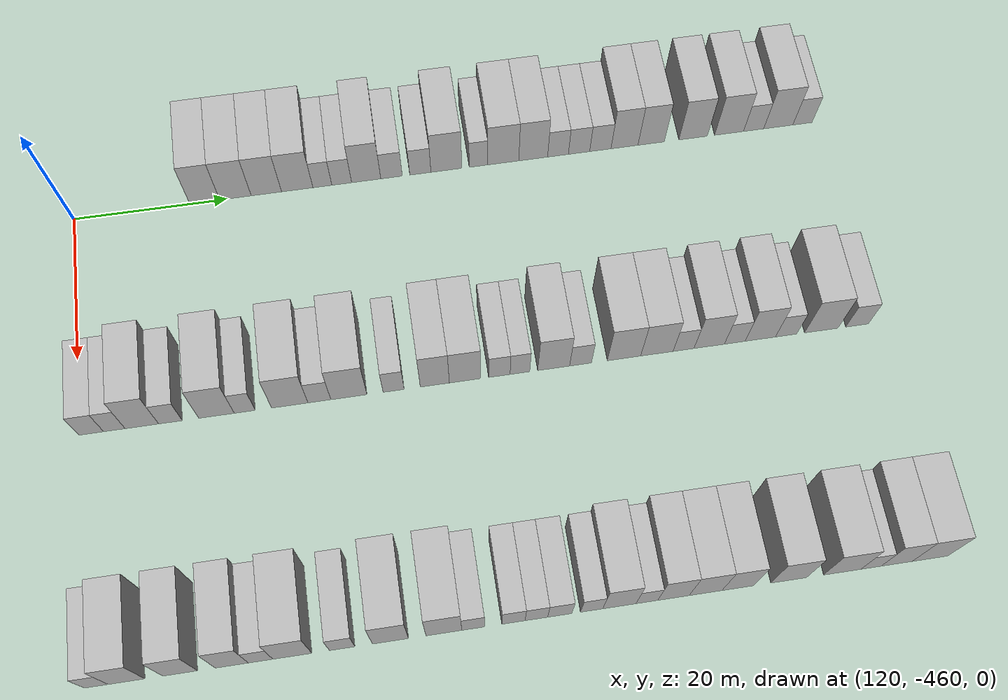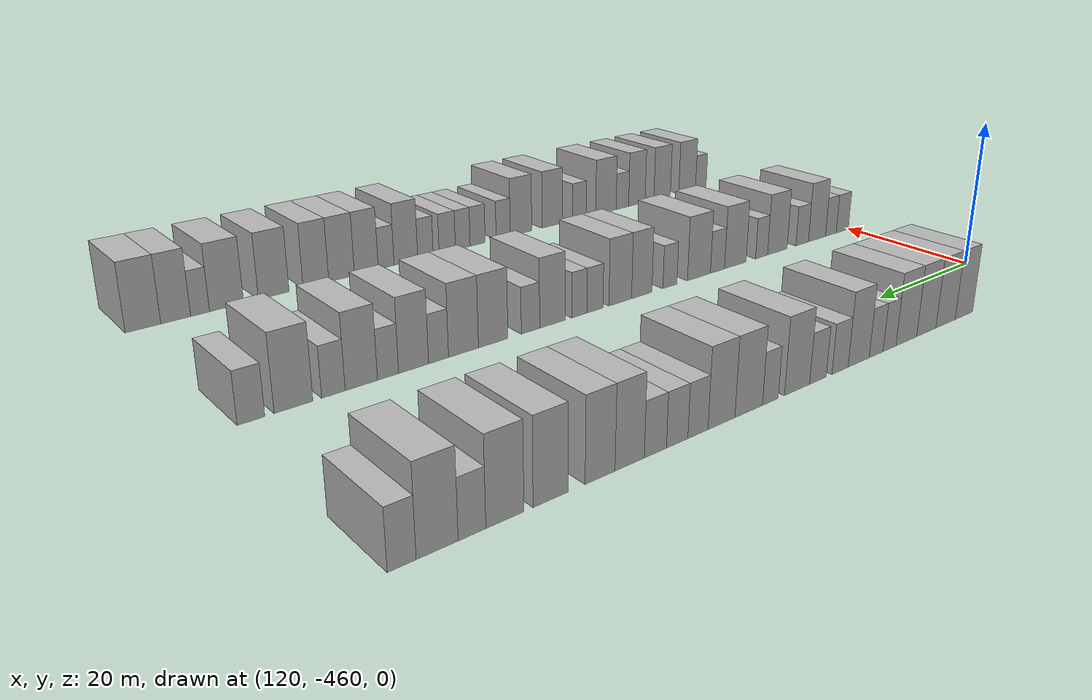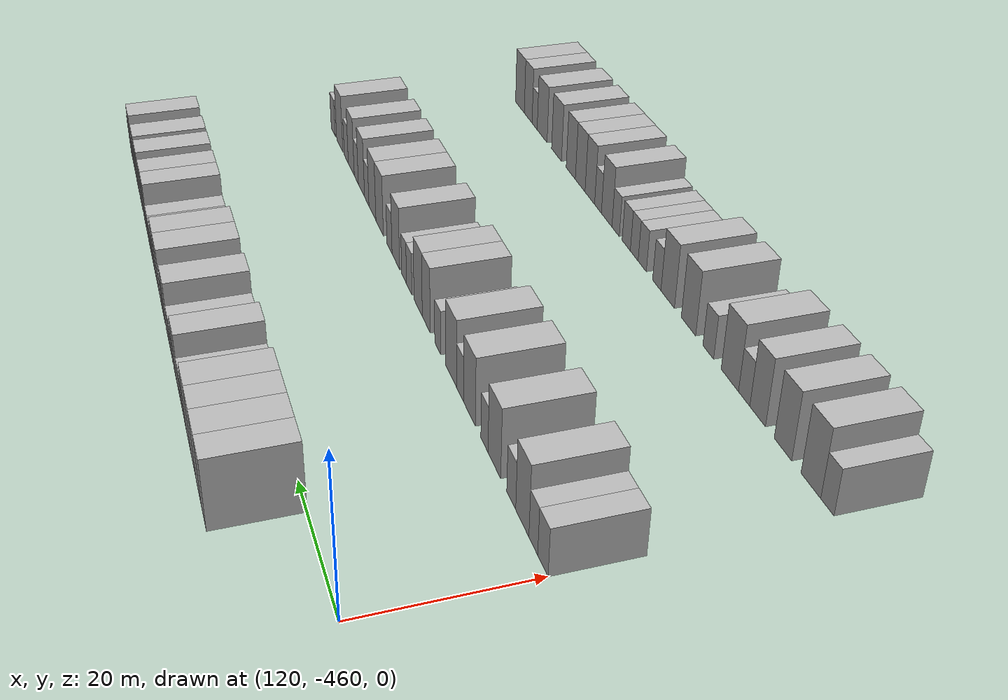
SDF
<sdf version="1.6">
 <world name="default">
  <model name="building_679">
   <static>1</static>
   <pose>115.0000 -442.9684 0 0.000000 0.000000 0.000000</pose>
   <link name="link">
    <pose>0 0 4.50 0 0 0</pose>
    <collision name="collision"><geometry><box><size>10.0000 3.9283 9.0000</size></box></geometry></collision>
    <visual name="visual">
     <cast_shadows>0</cast_shadows>
     <geometry><box><size>10.0000 3.9283 9.0000</size></box></geometry>
     <material>
      <script>
       <uri>model://HANNAS_wall/materials/scripts</uri>
       <uri>model://HANNAS_wall/materials/textures</uri>
       <name>vrc/HANNAS_wall</name>
      </script>
     </material>
    </visual>
   </link>
  </model>
  <model name="building_680">
   <static>1</static>
   <pose>115.0000 -438.9249 0 0.000000 0.000000 0.000000</pose>
   <link name="link">
    <pose>0 0 4.50 0 0 0</pose>
    <collision name="collision"><geometry><box><size>10.0000 4.1587 9.0000</size></box></geometry></collision>
    <visual name="visual">
     <cast_shadows>0</cast_shadows>
     <geometry><box><size>10.0000 4.1587 9.0000</size></box></geometry>
     <material>
      <script>
       <uri>model://HANNAS_wall/materials/scripts</uri>
       <uri>model://HANNAS_wall/materials/textures</uri>
       <name>vrc/HANNAS_wall</name>
      </script>
     </material>
    </visual>
   </link>
  </model>
  <model name="building_681">
   <static>1</static>
   <pose>115.0000 -434.8409 0 0.000000 0.000000 0.000000</pose>
   <link name="link">
    <pose>0 0 4.50 0 0 0</pose>
    <collision name="collision"><geometry><box><size>10.0000 4.0093 9.0000</size></box></geometry></collision>
    <visual name="visual">
     <cast_shadows>0</cast_shadows>
     <geometry><box><size>10.0000 4.0093 9.0000</size></box></geometry>
     <material>
      <script>
       <uri>model://HANNAS_wall/materials/scripts</uri>
       <uri>model://HANNAS_wall/materials/textures</uri>
       <name>vrc/HANNAS_wall</name>
      </script>
     </material>
    </visual>
   </link>
  </model>
  <model name="building_682">
   <static>1</static>
   <pose>115.0000 -430.7626 0 0.000000 0.000000 0.000000</pose>
   <link name="link">
    <pose>0 0 4.50 0 0 0</pose>
    <collision name="collision"><geometry><box><size>10.0000 4.1472 9.0000</size></box></geometry></collision>
    <visual name="visual">
     <cast_shadows>0</cast_shadows>
     <geometry><box><size>10.0000 4.1472 9.0000</size></box></geometry>
     <material>
      <script>
       <uri>model://HANNAS_wall/materials/scripts</uri>
       <uri>model://HANNAS_wall/materials/textures</uri>
       <name>vrc/HANNAS_wall</name>
      </script>
     </material>
    </visual>
   </link>
  </model>
  <model name="building_683">
   <static>1</static>
   <pose>115.0000 -427.4301 0 0.000000 0.000000 0.000000</pose>
   <link name="link">
    <pose>0 0 3.00 0 0 0</pose>
    <collision name="collision"><geometry><box><size>10.0000 2.5177 6.0000</size></box></geometry></collision>
    <visual name="visual">
     <cast_shadows>0</cast_shadows>
     <geometry><box><size>10.0000 2.5177 6.0000</size></box></geometry>
     <material>
      <script>
       <uri>model://HANNAS_wall/materials/scripts</uri>
       <uri>model://HANNAS_wall/materials/textures</uri>
       <name>vrc/HANNAS_wall</name>
      </script>
     </material>
    </visual>
   </link>
  </model>
  <model name="building_684">
   <static>1</static>
   <pose>115.0000 -424.8525 0 0.000000 0.000000 0.000000</pose>
   <link name="link">
    <pose>0 0 3.00 0 0 0</pose>
    <collision name="collision"><geometry><box><size>10.0000 2.6376 6.0000</size></box></geometry></collision>
    <visual name="visual">
     <cast_shadows>0</cast_shadows>
     <geometry><box><size>10.0000 2.6376 6.0000</size></box></geometry>
     <material>
      <script>
       <uri>model://HANNAS_wall/materials/scripts</uri>
       <uri>model://HANNAS_wall/materials/textures</uri>
       <name>vrc/HANNAS_wall</name>
      </script>
     </material>
    </visual>
   </link>
  </model>
  <model name="building_685">
   <static>1</static>
   <pose>115.0000 -421.5930 0 0.000000 0.000000 0.000000</pose>
   <link name="link">
    <pose>0 0 4.50 0 0 0</pose>
    <collision name="collision"><geometry><box><size>10.0000 3.8812 9.0000</size></box></geometry></collision>
    <visual name="visual">
     <cast_shadows>0</cast_shadows>
     <geometry><box><size>10.0000 3.8812 9.0000</size></box></geometry>
     <material>
      <script>
       <uri>model://HANNAS_wall/materials/scripts</uri>
       <uri>model://HANNAS_wall/materials/textures</uri>
       <name>vrc/HANNAS_wall</name>
      </script>
     </material>
    </visual>
   </link>
  </model>
  <model name="building_686">
   <static>1</static>
   <pose>115.0000 -418.2173 0 0.000000 0.000000 0.000000</pose>
   <link name="link">
    <pose>0 0 3.00 0 0 0</pose>
    <collision name="collision"><geometry><box><size>10.0000 2.8702 6.0000</size></box></geometry></collision>
    <visual name="visual">
     <cast_shadows>0</cast_shadows>
     <geometry><box><size>10.0000 2.8702 6.0000</size></box></geometry>
     <material>
      <script>
       <uri>model://HANNAS_wall/materials/scripts</uri>
       <uri>model://HANNAS_wall/materials/textures</uri>
       <name>vrc/HANNAS_wall</name>
      </script>
     </material>
    </visual>
   </link>
  </model>
  <model name="building_687">
   <static>1</static>
   <pose>115.0000 -414.3641 0 0.000000 0.000000 0.000000</pose>
   <link name="link">
    <pose>0 0 3.00 0 0 0</pose>
    <collision name="collision"><geometry><box><size>10.0000 2.8363 6.0000</size></box></geometry></collision>
    <visual name="visual">
     <cast_shadows>0</cast_shadows>
     <geometry><box><size>10.0000 2.8363 6.0000</size></box></geometry>
     <material>
      <script>
       <uri>model://HANNAS_wall/materials/scripts</uri>
       <uri>model://HANNAS_wall/materials/textures</uri>
       <name>vrc/HANNAS_wall</name>
      </script>
     </material>
    </visual>
   </link>
  </model>
  <model name="building_688">
   <static>1</static>
   <pose>115.0000 -410.8692 0 0.000000 0.000000 0.000000</pose>
   <link name="link">
    <pose>0 0 4.50 0 0 0</pose>
    <collision name="collision"><geometry><box><size>10.0000 4.1534 9.0000</size></box></geometry></collision>
    <visual name="visual">
     <cast_shadows>0</cast_shadows>
     <geometry><box><size>10.0000 4.1534 9.0000</size></box></geometry>
     <material>
      <script>
       <uri>model://HANNAS_wall/materials/scripts</uri>
       <uri>model://HANNAS_wall/materials/textures</uri>
       <name>vrc/HANNAS_wall</name>
      </script>
     </material>
    </visual>
   </link>
  </model>
  <model name="building_689">
   <static>1</static>
   <pose>115.0000 -406.5505 0 0.000000 0.000000 0.000000</pose>
   <link name="link">
    <pose>0 0 3.00 0 0 0</pose>
    <collision name="collision"><geometry><box><size>10.0000 2.4841 6.0000</size></box></geometry></collision>
    <visual name="visual">
     <cast_shadows>0</cast_shadows>
     <geometry><box><size>10.0000 2.4841 6.0000</size></box></geometry>
     <material>
      <script>
       <uri>model://HANNAS_wall/materials/scripts</uri>
       <uri>model://HANNAS_wall/materials/textures</uri>
       <name>vrc/HANNAS_wall</name>
      </script>
     </material>
    </visual>
   </link>
  </model>
  <model name="building_690">
   <static>1</static>
   <pose>115.0000 -403.2127 0 0.000000 0.000000 0.000000</pose>
   <link name="link">
    <pose>0 0 4.50 0 0 0</pose>
    <collision name="collision"><geometry><box><size>10.0000 4.1914 9.0000</size></box></geometry></collision>
    <visual name="visual">
     <cast_shadows>0</cast_shadows>
     <geometry><box><size>10.0000 4.1914 9.0000</size></box></geometry>
     <material>
      <script>
       <uri>model://HANNAS_wall/materials/scripts</uri>
       <uri>model://HANNAS_wall/materials/textures</uri>
       <name>vrc/HANNAS_wall</name>
      </script>
     </material>
    </visual>
   </link>
  </model>
  <model name="building_691">
   <static>1</static>
   <pose>115.0000 -399.1612 0 0.000000 0.000000 0.000000</pose>
   <link name="link">
    <pose>0 0 4.50 0 0 0</pose>
    <collision name="collision"><geometry><box><size>10.0000 3.9117 9.0000</size></box></geometry></collision>
    <visual name="visual">
     <cast_shadows>0</cast_shadows>
     <geometry><box><size>10.0000 3.9117 9.0000</size></box></geometry>
     <material>
      <script>
       <uri>model://HANNAS_wall/materials/scripts</uri>
       <uri>model://HANNAS_wall/materials/textures</uri>
       <name>vrc/HANNAS_wall</name>
      </script>
     </material>
    </visual>
   </link>
  </model>
  <model name="building_692">
   <static>1</static>
   <pose>115.0000 -395.7961 0 0.000000 0.000000 0.000000</pose>
   <link name="link">
    <pose>0 0 3.00 0 0 0</pose>
    <collision name="collision"><geometry><box><size>10.0000 2.8184 6.0000</size></box></geometry></collision>
    <visual name="visual">
     <cast_shadows>0</cast_shadows>
     <geometry><box><size>10.0000 2.8184 6.0000</size></box></geometry>
     <material>
      <script>
       <uri>model://HANNAS_wall/materials/scripts</uri>
       <uri>model://HANNAS_wall/materials/textures</uri>
       <name>vrc/HANNAS_wall</name>
      </script>
     </material>
    </visual>
   </link>
  </model>
  <model name="building_693">
   <static>1</static>
   <pose>115.0000 -392.9397 0 0.000000 0.000000 0.000000</pose>
   <link name="link">
    <pose>0 0 3.00 0 0 0</pose>
    <collision name="collision"><geometry><box><size>10.0000 2.8944 6.0000</size></box></geometry></collision>
    <visual name="visual">
     <cast_shadows>0</cast_shadows>
     <geometry><box><size>10.0000 2.8944 6.0000</size></box></geometry>
     <material>
      <script>
       <uri>model://HANNAS_wall/materials/scripts</uri>
       <uri>model://HANNAS_wall/materials/textures</uri>
       <name>vrc/HANNAS_wall</name>
      </script>
     </material>
    </visual>
   </link>
  </model>
  <model name="building_694">
   <static>1</static>
   <pose>115.0000 -390.0396 0 0.000000 0.000000 0.000000</pose>
   <link name="link">
    <pose>0 0 3.00 0 0 0</pose>
    <collision name="collision"><geometry><box><size>10.0000 2.9059 6.0000</size></box></geometry></collision>
    <visual name="visual">
     <cast_shadows>0</cast_shadows>
     <geometry><box><size>10.0000 2.9059 6.0000</size></box></geometry>
     <material>
      <script>
       <uri>model://HANNAS_wall/materials/scripts</uri>
       <uri>model://HANNAS_wall/materials/textures</uri>
       <name>vrc/HANNAS_wall</name>
      </script>
     </material>
    </visual>
   </link>
  </model>
  <model name="building_695">
   <static>1</static>
   <pose>115.0000 -386.7426 0 0.000000 0.000000 0.000000</pose>
   <link name="link">
    <pose>0 0 4.50 0 0 0</pose>
    <collision name="collision"><geometry><box><size>10.0000 3.6881 9.0000</size></box></geometry></collision>
    <visual name="visual">
     <cast_shadows>0</cast_shadows>
     <geometry><box><size>10.0000 3.6881 9.0000</size></box></geometry>
     <material>
      <script>
       <uri>model://HANNAS_wall/materials/scripts</uri>
       <uri>model://HANNAS_wall/materials/textures</uri>
       <name>vrc/HANNAS_wall</name>
      </script>
     </material>
    </visual>
   </link>
  </model>
  <model name="building_696">
   <static>1</static>
   <pose>115.0000 -383.0917 0 0.000000 0.000000 0.000000</pose>
   <link name="link">
    <pose>0 0 4.50 0 0 0</pose>
    <collision name="collision"><geometry><box><size>10.0000 3.6136 9.0000</size></box></geometry></collision>
    <visual name="visual">
     <cast_shadows>0</cast_shadows>
     <geometry><box><size>10.0000 3.6136 9.0000</size></box></geometry>
     <material>
      <script>
       <uri>model://HANNAS_wall/materials/scripts</uri>
       <uri>model://HANNAS_wall/materials/textures</uri>
       <name>vrc/HANNAS_wall</name>
      </script>
     </material>
    </visual>
   </link>
  </model>
  <model name="building_697">
   <static>1</static>
   <pose>115.0000 -377.3254 0 0.000000 0.000000 0.000000</pose>
   <link name="link">
    <pose>0 0 4.50 0 0 0</pose>
    <collision name="collision"><geometry><box><size>10.0000 3.9190 9.0000</size></box></geometry></collision>
    <visual name="visual">
     <cast_shadows>0</cast_shadows>
     <geometry><box><size>10.0000 3.9190 9.0000</size></box></geometry>
     <material>
      <script>
       <uri>model://HANNAS_wall/materials/scripts</uri>
       <uri>model://HANNAS_wall/materials/textures</uri>
       <name>vrc/HANNAS_wall</name>
      </script>
     </material>
    </visual>
   </link>
  </model>
  <model name="building_698">
   <static>1</static>
   <pose>115.0000 -372.3649 0 0.000000 0.000000 0.000000</pose>
   <link name="link">
    <pose>0 0 4.50 0 0 0</pose>
    <collision name="collision"><geometry><box><size>10.0000 4.0021 9.0000</size></box></geometry></collision>
    <visual name="visual">
     <cast_shadows>0</cast_shadows>
     <geometry><box><size>10.0000 4.0021 9.0000</size></box></geometry>
     <material>
      <script>
       <uri>model://HANNAS_wall/materials/scripts</uri>
       <uri>model://HANNAS_wall/materials/textures</uri>
       <name>vrc/HANNAS_wall</name>
      </script>
     </material>
    </visual>
   </link>
  </model>
  <model name="building_699">
   <static>1</static>
   <pose>115.0000 -368.9711 0 0.000000 0.000000 0.000000</pose>
   <link name="link">
    <pose>0 0 3.00 0 0 0</pose>
    <collision name="collision"><geometry><box><size>10.0000 2.7854 6.0000</size></box></geometry></collision>
    <visual name="visual">
     <cast_shadows>0</cast_shadows>
     <geometry><box><size>10.0000 2.7854 6.0000</size></box></geometry>
     <material>
      <script>
       <uri>model://HANNAS_wall/materials/scripts</uri>
       <uri>model://HANNAS_wall/materials/textures</uri>
       <name>vrc/HANNAS_wall</name>
      </script>
     </material>
    </visual>
   </link>
  </model>
  <model name="building_700">
   <static>1</static>
   <pose>115.0000 -365.5543 0 0.000000 0.000000 0.000000</pose>
   <link name="link">
    <pose>0 0 4.50 0 0 0</pose>
    <collision name="collision"><geometry><box><size>10.0000 4.0482 9.0000</size></box></geometry></collision>
    <visual name="visual">
     <cast_shadows>0</cast_shadows>
     <geometry><box><size>10.0000 4.0482 9.0000</size></box></geometry>
     <material>
      <script>
       <uri>model://HANNAS_wall/materials/scripts</uri>
       <uri>model://HANNAS_wall/materials/textures</uri>
       <name>vrc/HANNAS_wall</name>
      </script>
     </material>
    </visual>
   </link>
  </model>
  <model name="building_701">
   <static>1</static>
   <pose>115.0000 -362.1959 0 0.000000 0.000000 0.000000</pose>
   <link name="link">
    <pose>0 0 3.00 0 0 0</pose>
    <collision name="collision"><geometry><box><size>10.0000 2.6687 6.0000</size></box></geometry></collision>
    <visual name="visual">
     <cast_shadows>0</cast_shadows>
     <geometry><box><size>10.0000 2.6687 6.0000</size></box></geometry>
     <material>
      <script>
       <uri>model://HANNAS_wall/materials/scripts</uri>
       <uri>model://HANNAS_wall/materials/textures</uri>
       <name>vrc/HANNAS_wall</name>
      </script>
     </material>
    </visual>
   </link>
  </model>
  <model name="building_907">
   <static>1</static>
   <pose>145.0000 -458.5121 0 0.000000 0.000000 0.000000</pose>
   <link name="link">
    <pose>0 0 3.00 0 0 0</pose>
    <collision name="collision"><geometry><box><size>10.0000 2.9758 6.0000</size></box></geometry></collision>
    <visual name="visual">
     <cast_shadows>0</cast_shadows>
     <geometry><box><size>10.0000 2.9758 6.0000</size></box></geometry>
     <material>
      <script>
       <uri>model://HANNAS_wall/materials/scripts</uri>
       <uri>model://HANNAS_wall/materials/textures</uri>
       <name>vrc/HANNAS_wall</name>
      </script>
     </material>
    </visual>
   </link>
  </model>
  <model name="building_908">
   <static>1</static>
   <pose>145.0000 -455.7255 0 0.000000 0.000000 0.000000</pose>
   <link name="link">
    <pose>0 0 3.00 0 0 0</pose>
    <collision name="collision"><geometry><box><size>10.0000 2.5973 6.0000</size></box></geometry></collision>
    <visual name="visual">
     <cast_shadows>0</cast_shadows>
     <geometry><box><size>10.0000 2.5973 6.0000</size></box></geometry>
     <material>
      <script>
       <uri>model://HANNAS_wall/materials/scripts</uri>
       <uri>model://HANNAS_wall/materials/textures</uri>
       <name>vrc/HANNAS_wall</name>
      </script>
     </material>
    </visual>
   </link>
  </model>
  <model name="building_909">
   <static>1</static>
   <pose>145.0000 -452.3979 0 0.000000 0.000000 0.000000</pose>
   <link name="link">
    <pose>0 0 4.50 0 0 0</pose>
    <collision name="collision"><geometry><box><size>10.0000 4.0579 9.0000</size></box></geometry></collision>
    <visual name="visual">
     <cast_shadows>0</cast_shadows>
     <geometry><box><size>10.0000 4.0579 9.0000</size></box></geometry>
     <material>
      <script>
       <uri>model://HANNAS_wall/materials/scripts</uri>
       <uri>model://HANNAS_wall/materials/textures</uri>
       <name>vrc/HANNAS_wall</name>
      </script>
     </material>
    </visual>
   </link>
  </model>
  <model name="building_910">
   <static>1</static>
   <pose>145.0000 -448.9315 0 0.000000 0.000000 0.000000</pose>
   <link name="link">
    <pose>0 0 3.00 0 0 0</pose>
    <collision name="collision"><geometry><box><size>10.0000 2.8750 6.0000</size></box></geometry></collision>
    <visual name="visual">
     <cast_shadows>0</cast_shadows>
     <geometry><box><size>10.0000 2.8750 6.0000</size></box></geometry>
     <material>
      <script>
       <uri>model://HANNAS_wall/materials/scripts</uri>
       <uri>model://HANNAS_wall/materials/textures</uri>
       <name>vrc/HANNAS_wall</name>
      </script>
     </material>
    </visual>
   </link>
  </model>
  <model name="building_911">
   <static>1</static>
   <pose>145.0000 -443.3315 0 0.000000 0.000000 0.000000</pose>
   <link name="link">
    <pose>0 0 4.50 0 0 0</pose>
    <collision name="collision"><geometry><box><size>10.0000 4.3251 9.0000</size></box></geometry></collision>
    <visual name="visual">
     <cast_shadows>0</cast_shadows>
     <geometry><box><size>10.0000 4.3251 9.0000</size></box></geometry>
     <material>
      <script>
       <uri>model://HANNAS_wall/materials/scripts</uri>
       <uri>model://HANNAS_wall/materials/textures</uri>
       <name>vrc/HANNAS_wall</name>
      </script>
     </material>
    </visual>
   </link>
  </model>
  <model name="building_912">
   <static>1</static>
   <pose>145.0000 -439.8831 0 0.000000 0.000000 0.000000</pose>
   <link name="link">
    <pose>0 0 3.00 0 0 0</pose>
    <collision name="collision"><geometry><box><size>10.0000 2.5716 6.0000</size></box></geometry></collision>
    <visual name="visual">
     <cast_shadows>0</cast_shadows>
     <geometry><box><size>10.0000 2.5716 6.0000</size></box></geometry>
     <material>
      <script>
       <uri>model://HANNAS_wall/materials/scripts</uri>
       <uri>model://HANNAS_wall/materials/textures</uri>
       <name>vrc/HANNAS_wall</name>
      </script>
     </material>
    </visual>
   </link>
  </model>
  <model name="building_913">
   <static>1</static>
   <pose>145.0000 -434.3703 0 0.000000 0.000000 0.000000</pose>
   <link name="link">
    <pose>0 0 4.50 0 0 0</pose>
    <collision name="collision"><geometry><box><size>10.0000 4.4540 9.0000</size></box></geometry></collision>
    <visual name="visual">
     <cast_shadows>0</cast_shadows>
     <geometry><box><size>10.0000 4.4540 9.0000</size></box></geometry>
     <material>
      <script>
       <uri>model://HANNAS_wall/materials/scripts</uri>
       <uri>model://HANNAS_wall/materials/textures</uri>
       <name>vrc/HANNAS_wall</name>
      </script>
     </material>
    </visual>
   </link>
  </model>
  <model name="building_914">
   <static>1</static>
   <pose>145.0000 -430.7350 0 0.000000 0.000000 0.000000</pose>
   <link name="link">
    <pose>0 0 3.00 0 0 0</pose>
    <collision name="collision"><geometry><box><size>10.0000 2.8167 6.0000</size></box></geometry></collision>
    <visual name="visual">
     <cast_shadows>0</cast_shadows>
     <geometry><box><size>10.0000 2.8167 6.0000</size></box></geometry>
     <material>
      <script>
       <uri>model://HANNAS_wall/materials/scripts</uri>
       <uri>model://HANNAS_wall/materials/textures</uri>
       <name>vrc/HANNAS_wall</name>
      </script>
     </material>
    </visual>
   </link>
  </model>
  <model name="building_915">
   <static>1</static>
   <pose>145.0000 -427.0944 0 0.000000 0.000000 0.000000</pose>
   <link name="link">
    <pose>0 0 4.50 0 0 0</pose>
    <collision name="collision"><geometry><box><size>10.0000 4.4644 9.0000</size></box></geometry></collision>
    <visual name="visual">
     <cast_shadows>0</cast_shadows>
     <geometry><box><size>10.0000 4.4644 9.0000</size></box></geometry>
     <material>
      <script>
       <uri>model://HANNAS_wall/materials/scripts</uri>
       <uri>model://HANNAS_wall/materials/textures</uri>
       <name>vrc/HANNAS_wall</name>
      </script>
     </material>
    </visual>
   </link>
  </model>
  <model name="building_916">
   <static>1</static>
   <pose>145.0000 -421.5565 0 0.000000 0.000000 0.000000</pose>
   <link name="link">
    <pose>0 0 3.00 0 0 0</pose>
    <collision name="collision"><geometry><box><size>10.0000 2.6115 6.0000</size></box></geometry></collision>
    <visual name="visual">
     <cast_shadows>0</cast_shadows>
     <geometry><box><size>10.0000 2.6115 6.0000</size></box></geometry>
     <material>
      <script>
       <uri>model://HANNAS_wall/materials/scripts</uri>
       <uri>model://HANNAS_wall/materials/textures</uri>
       <name>vrc/HANNAS_wall</name>
      </script>
     </material>
    </visual>
   </link>
  </model>
  <model name="building_917">
   <static>1</static>
   <pose>145.0000 -416.4414 0 0.000000 0.000000 0.000000</pose>
   <link name="link">
    <pose>0 0 4.50 0 0 0</pose>
    <collision name="collision"><geometry><box><size>10.0000 3.6188 9.0000</size></box></geometry></collision>
    <visual name="visual">
     <cast_shadows>0</cast_shadows>
     <geometry><box><size>10.0000 3.6188 9.0000</size></box></geometry>
     <material>
      <script>
       <uri>model://HANNAS_wall/materials/scripts</uri>
       <uri>model://HANNAS_wall/materials/textures</uri>
       <name>vrc/HANNAS_wall</name>
      </script>
     </material>
    </visual>
   </link>
  </model>
  <model name="building_918">
   <static>1</static>
   <pose>145.0000 -412.6809 0 0.000000 0.000000 0.000000</pose>
   <link name="link">
    <pose>0 0 4.50 0 0 0</pose>
    <collision name="collision"><geometry><box><size>10.0000 3.9022 9.0000</size></box></geometry></collision>
    <visual name="visual">
     <cast_shadows>0</cast_shadows>
     <geometry><box><size>10.0000 3.9022 9.0000</size></box></geometry>
     <material>
      <script>
       <uri>model://HANNAS_wall/materials/scripts</uri>
       <uri>model://HANNAS_wall/materials/textures</uri>
       <name>vrc/HANNAS_wall</name>
      </script>
     </material>
    </visual>
   </link>
  </model>
  <model name="building_919">
   <static>1</static>
   <pose>145.0000 -408.3902 0 0.000000 0.000000 0.000000</pose>
   <link name="link">
    <pose>0 0 3.00 0 0 0</pose>
    <collision name="collision"><geometry><box><size>10.0000 2.6793 6.0000</size></box></geometry></collision>
    <visual name="visual">
     <cast_shadows>0</cast_shadows>
     <geometry><box><size>10.0000 2.6793 6.0000</size></box></geometry>
     <material>
      <script>
       <uri>model://HANNAS_wall/materials/scripts</uri>
       <uri>model://HANNAS_wall/materials/textures</uri>
       <name>vrc/HANNAS_wall</name>
      </script>
     </material>
    </visual>
   </link>
  </model>
  <model name="building_920">
   <static>1</static>
   <pose>145.0000 -405.8153 0 0.000000 0.000000 0.000000</pose>
   <link name="link">
    <pose>0 0 3.00 0 0 0</pose>
    <collision name="collision"><geometry><box><size>10.0000 2.4705 6.0000</size></box></geometry></collision>
    <visual name="visual">
     <cast_shadows>0</cast_shadows>
     <geometry><box><size>10.0000 2.4705 6.0000</size></box></geometry>
     <material>
      <script>
       <uri>model://HANNAS_wall/materials/scripts</uri>
       <uri>model://HANNAS_wall/materials/textures</uri>
       <name>vrc/HANNAS_wall</name>
      </script>
     </material>
    </visual>
   </link>
  </model>
  <model name="building_921">
   <static>1</static>
   <pose>145.0000 -401.5707 0 0.000000 0.000000 0.000000</pose>
   <link name="link">
    <pose>0 0 4.50 0 0 0</pose>
    <collision name="collision"><geometry><box><size>10.0000 4.0186 9.0000</size></box></geometry></collision>
    <visual name="visual">
     <cast_shadows>0</cast_shadows>
     <geometry><box><size>10.0000 4.0186 9.0000</size></box></geometry>
     <material>
      <script>
       <uri>model://HANNAS_wall/materials/scripts</uri>
       <uri>model://HANNAS_wall/materials/textures</uri>
       <name>vrc/HANNAS_wall</name>
      </script>
     </material>
    </visual>
   </link>
  </model>
  <model name="building_922">
   <static>1</static>
   <pose>145.0000 -398.1811 0 0.000000 0.000000 0.000000</pose>
   <link name="link">
    <pose>0 0 3.00 0 0 0</pose>
    <collision name="collision"><geometry><box><size>10.0000 2.7606 6.0000</size></box></geometry></collision>
    <visual name="visual">
     <cast_shadows>0</cast_shadows>
     <geometry><box><size>10.0000 2.7606 6.0000</size></box></geometry>
     <material>
      <script>
       <uri>model://HANNAS_wall/materials/scripts</uri>
       <uri>model://HANNAS_wall/materials/textures</uri>
       <name>vrc/HANNAS_wall</name>
      </script>
     </material>
    </visual>
   </link>
  </model>
  <model name="building_923">
   <static>1</static>
   <pose>145.0000 -392.6865 0 0.000000 0.000000 0.000000</pose>
   <link name="link">
    <pose>0 0 4.50 0 0 0</pose>
    <collision name="collision"><geometry><box><size>10.0000 4.2286 9.0000</size></box></geometry></collision>
    <visual name="visual">
     <cast_shadows>0</cast_shadows>
     <geometry><box><size>10.0000 4.2286 9.0000</size></box></geometry>
     <material>
      <script>
       <uri>model://HANNAS_wall/materials/scripts</uri>
       <uri>model://HANNAS_wall/materials/textures</uri>
       <name>vrc/HANNAS_wall</name>
      </script>
     </material>
    </visual>
   </link>
  </model>
  <model name="building_924">
   <static>1</static>
   <pose>145.0000 -388.5103 0 0.000000 0.000000 0.000000</pose>
   <link name="link">
    <pose>0 0 4.50 0 0 0</pose>
    <collision name="collision"><geometry><box><size>10.0000 4.1237 9.0000</size></box></geometry></collision>
    <visual name="visual">
     <cast_shadows>0</cast_shadows>
     <geometry><box><size>10.0000 4.1237 9.0000</size></box></geometry>
     <material>
      <script>
       <uri>model://HANNAS_wall/materials/scripts</uri>
       <uri>model://HANNAS_wall/materials/textures</uri>
       <name>vrc/HANNAS_wall</name>
      </script>
     </material>
    </visual>
   </link>
  </model>
  <model name="building_925">
   <static>1</static>
   <pose>145.0000 -385.1184 0 0.000000 0.000000 0.000000</pose>
   <link name="link">
    <pose>0 0 3.00 0 0 0</pose>
    <collision name="collision"><geometry><box><size>10.0000 2.6602 6.0000</size></box></geometry></collision>
    <visual name="visual">
     <cast_shadows>0</cast_shadows>
     <geometry><box><size>10.0000 2.6602 6.0000</size></box></geometry>
     <material>
      <script>
       <uri>model://HANNAS_wall/materials/scripts</uri>
       <uri>model://HANNAS_wall/materials/textures</uri>
       <name>vrc/HANNAS_wall</name>
      </script>
     </material>
    </visual>
   </link>
  </model>
  <model name="building_926">
   <static>1</static>
   <pose>145.0000 -381.8442 0 0.000000 0.000000 0.000000</pose>
   <link name="link">
    <pose>0 0 4.50 0 0 0</pose>
    <collision name="collision"><geometry><box><size>10.0000 3.8882 9.0000</size></box></geometry></collision>
    <visual name="visual">
     <cast_shadows>0</cast_shadows>
     <geometry><box><size>10.0000 3.8882 9.0000</size></box></geometry>
     <material>
      <script>
       <uri>model://HANNAS_wall/materials/scripts</uri>
       <uri>model://HANNAS_wall/materials/textures</uri>
       <name>vrc/HANNAS_wall</name>
      </script>
     </material>
    </visual>
   </link>
  </model>
  <model name="building_927">
   <static>1</static>
   <pose>145.0000 -378.5793 0 0.000000 0.000000 0.000000</pose>
   <link name="link">
    <pose>0 0 3.00 0 0 0</pose>
    <collision name="collision"><geometry><box><size>10.0000 2.6416 6.0000</size></box></geometry></collision>
    <visual name="visual">
     <cast_shadows>0</cast_shadows>
     <geometry><box><size>10.0000 2.6416 6.0000</size></box></geometry>
     <material>
      <script>
       <uri>model://HANNAS_wall/materials/scripts</uri>
       <uri>model://HANNAS_wall/materials/textures</uri>
       <name>vrc/HANNAS_wall</name>
      </script>
     </material>
    </visual>
   </link>
  </model>
  <model name="building_928">
   <static>1</static>
   <pose>145.0000 -375.3024 0 0.000000 0.000000 0.000000</pose>
   <link name="link">
    <pose>0 0 4.50 0 0 0</pose>
    <collision name="collision"><geometry><box><size>10.0000 3.9122 9.0000</size></box></geometry></collision>
    <visual name="visual">
     <cast_shadows>0</cast_shadows>
     <geometry><box><size>10.0000 3.9122 9.0000</size></box></geometry>
     <material>
      <script>
       <uri>model://HANNAS_wall/materials/scripts</uri>
       <uri>model://HANNAS_wall/materials/textures</uri>
       <name>vrc/HANNAS_wall</name>
      </script>
     </material>
    </visual>
   </link>
  </model>
  <model name="building_929">
   <static>1</static>
   <pose>145.0000 -371.9725 0 0.000000 0.000000 0.000000</pose>
   <link name="link">
    <pose>0 0 3.00 0 0 0</pose>
    <collision name="collision"><geometry><box><size>10.0000 2.7475 6.0000</size></box></geometry></collision>
    <visual name="visual">
     <cast_shadows>0</cast_shadows>
     <geometry><box><size>10.0000 2.7475 6.0000</size></box></geometry>
     <material>
      <script>
       <uri>model://HANNAS_wall/materials/scripts</uri>
       <uri>model://HANNAS_wall/materials/textures</uri>
       <name>vrc/HANNAS_wall</name>
      </script>
     </material>
    </visual>
   </link>
  </model>
  <model name="building_930">
   <static>1</static>
   <pose>145.0000 -367.4319 0 0.000000 0.000000 0.000000</pose>
   <link name="link">
    <pose>0 0 4.50 0 0 0</pose>
    <collision name="collision"><geometry><box><size>10.0000 4.3336 9.0000</size></box></geometry></collision>
    <visual name="visual">
     <cast_shadows>0</cast_shadows>
     <geometry><box><size>10.0000 4.3336 9.0000</size></box></geometry>
     <material>
      <script>
       <uri>model://HANNAS_wall/materials/scripts</uri>
       <uri>model://HANNAS_wall/materials/textures</uri>
       <name>vrc/HANNAS_wall</name>
      </script>
     </material>
    </visual>
   </link>
  </model>
  <model name="building_931">
   <static>1</static>
   <pose>145.0000 -362.7943 0 0.000000 0.000000 0.000000</pose>
   <link name="link">
    <pose>0 0 3.00 0 0 0</pose>
    <collision name="collision"><geometry><box><size>10.0000 2.9417 6.0000</size></box></geometry></collision>
    <visual name="visual">
     <cast_shadows>0</cast_shadows>
     <geometry><box><size>10.0000 2.9417 6.0000</size></box></geometry>
     <material>
      <script>
       <uri>model://HANNAS_wall/materials/scripts</uri>
       <uri>model://HANNAS_wall/materials/textures</uri>
       <name>vrc/HANNAS_wall</name>
      </script>
     </material>
    </visual>
   </link>
  </model>
  <model name="building_1133">
   <static>1</static>
   <pose>175.0000 -458.6750 0 0.000000 0.000000 0.000000</pose>
   <link name="link">
    <pose>0 0 3.00 0 0 0</pose>
    <collision name="collision"><geometry><box><size>10.0000 2.6500 6.0000</size></box></geometry></collision>
    <visual name="visual">
     <cast_shadows>0</cast_shadows>
     <geometry><box><size>10.0000 2.6500 6.0000</size></box></geometry>
     <material>
      <script>
       <uri>model://HANNAS_wall/materials/scripts</uri>
       <uri>model://HANNAS_wall/materials/textures</uri>
       <name>vrc/HANNAS_wall</name>
      </script>
     </material>
    </visual>
   </link>
  </model>
  <model name="building_1134">
   <static>1</static>
   <pose>175.0000 -455.3092 0 0.000000 0.000000 0.000000</pose>
   <link name="link">
    <pose>0 0 4.50 0 0 0</pose>
    <collision name="collision"><geometry><box><size>10.0000 4.0815 9.0000</size></box></geometry></collision>
    <visual name="visual">
     <cast_shadows>0</cast_shadows>
     <geometry><box><size>10.0000 4.0815 9.0000</size></box></geometry>
     <material>
      <script>
       <uri>model://HANNAS_wall/materials/scripts</uri>
       <uri>model://HANNAS_wall/materials/textures</uri>
       <name>vrc/HANNAS_wall</name>
      </script>
     </material>
    </visual>
   </link>
  </model>
  <model name="building_1135">
   <static>1</static>
   <pose>175.0000 -449.3266 0 0.000000 0.000000 0.000000</pose>
   <link name="link">
    <pose>0 0 4.50 0 0 0</pose>
    <collision name="collision"><geometry><box><size>10.0000 3.8836 9.0000</size></box></geometry></collision>
    <visual name="visual">
     <cast_shadows>0</cast_shadows>
     <geometry><box><size>10.0000 3.8836 9.0000</size></box></geometry>
     <material>
      <script>
       <uri>model://HANNAS_wall/materials/scripts</uri>
       <uri>model://HANNAS_wall/materials/textures</uri>
       <name>vrc/HANNAS_wall</name>
      </script>
     </material>
    </visual>
   </link>
  </model>
  <model name="building_1136">
   <static>1</static>
   <pose>175.0000 -443.5268 0 0.000000 0.000000 0.000000</pose>
   <link name="link">
    <pose>0 0 4.50 0 0 0</pose>
    <collision name="collision"><geometry><box><size>10.0000 3.7161 9.0000</size></box></geometry></collision>
    <visual name="visual">
     <cast_shadows>0</cast_shadows>
     <geometry><box><size>10.0000 3.7161 9.0000</size></box></geometry>
     <material>
      <script>
       <uri>model://HANNAS_wall/materials/scripts</uri>
       <uri>model://HANNAS_wall/materials/textures</uri>
       <name>vrc/HANNAS_wall</name>
      </script>
     </material>
    </visual>
   </link>
  </model>
  <model name="building_1137">
   <static>1</static>
   <pose>175.0000 -440.2804 0 0.000000 0.000000 0.000000</pose>
   <link name="link">
    <pose>0 0 3.00 0 0 0</pose>
    <collision name="collision"><geometry><box><size>10.0000 2.7767 6.0000</size></box></geometry></collision>
    <visual name="visual">
     <cast_shadows>0</cast_shadows>
     <geometry><box><size>10.0000 2.7767 6.0000</size></box></geometry>
     <material>
      <script>
       <uri>model://HANNAS_wall/materials/scripts</uri>
       <uri>model://HANNAS_wall/materials/textures</uri>
       <name>vrc/HANNAS_wall</name>
      </script>
     </material>
    </visual>
   </link>
  </model>
  <model name="building_1138">
   <static>1</static>
   <pose>175.0000 -436.6890 0 0.000000 0.000000 0.000000</pose>
   <link name="link">
    <pose>0 0 4.50 0 0 0</pose>
    <collision name="collision"><geometry><box><size>10.0000 4.4060 9.0000</size></box></geometry></collision>
    <visual name="visual">
     <cast_shadows>0</cast_shadows>
     <geometry><box><size>10.0000 4.4060 9.0000</size></box></geometry>
     <material>
      <script>
       <uri>model://HANNAS_wall/materials/scripts</uri>
       <uri>model://HANNAS_wall/materials/textures</uri>
       <name>vrc/HANNAS_wall</name>
      </script>
     </material>
    </visual>
   </link>
  </model>
  <model name="building_1139">
   <static>1</static>
   <pose>175.0000 -431.0399 0 0.000000 0.000000 0.000000</pose>
   <link name="link">
    <pose>0 0 3.00 0 0 0</pose>
    <collision name="collision"><geometry><box><size>10.0000 2.8923 6.0000</size></box></geometry></collision>
    <visual name="visual">
     <cast_shadows>0</cast_shadows>
     <geometry><box><size>10.0000 2.8923 6.0000</size></box></geometry>
     <material>
      <script>
       <uri>model://HANNAS_wall/materials/scripts</uri>
       <uri>model://HANNAS_wall/materials/textures</uri>
       <name>vrc/HANNAS_wall</name>
      </script>
     </material>
    </visual>
   </link>
  </model>
  <model name="building_1140">
   <static>1</static>
   <pose>175.0000 -425.5358 0 0.000000 0.000000 0.000000</pose>
   <link name="link">
    <pose>0 0 4.50 0 0 0</pose>
    <collision name="collision"><geometry><box><size>10.0000 4.1159 9.0000</size></box></geometry></collision>
    <visual name="visual">
     <cast_shadows>0</cast_shadows>
     <geometry><box><size>10.0000 4.1159 9.0000</size></box></geometry>
     <material>
      <script>
       <uri>model://HANNAS_wall/materials/scripts</uri>
       <uri>model://HANNAS_wall/materials/textures</uri>
       <name>vrc/HANNAS_wall</name>
      </script>
     </material>
    </visual>
   </link>
  </model>
  <model name="building_1141">
   <static>1</static>
   <pose>175.0000 -419.4273 0 0.000000 0.000000 0.000000</pose>
   <link name="link">
    <pose>0 0 4.50 0 0 0</pose>
    <collision name="collision"><geometry><box><size>10.0000 4.1010 9.0000</size></box></geometry></collision>
    <visual name="visual">
     <cast_shadows>0</cast_shadows>
     <geometry><box><size>10.0000 4.1010 9.0000</size></box></geometry>
     <material>
      <script>
       <uri>model://HANNAS_wall/materials/scripts</uri>
       <uri>model://HANNAS_wall/materials/textures</uri>
       <name>vrc/HANNAS_wall</name>
      </script>
     </material>
    </visual>
   </link>
  </model>
  <model name="building_1142">
   <static>1</static>
   <pose>175.0000 -416.0684 0 0.000000 0.000000 0.000000</pose>
   <link name="link">
    <pose>0 0 3.00 0 0 0</pose>
    <collision name="collision"><geometry><box><size>10.0000 2.6169 6.0000</size></box></geometry></collision>
    <visual name="visual">
     <cast_shadows>0</cast_shadows>
     <geometry><box><size>10.0000 2.6169 6.0000</size></box></geometry>
     <material>
      <script>
       <uri>model://HANNAS_wall/materials/scripts</uri>
       <uri>model://HANNAS_wall/materials/textures</uri>
       <name>vrc/HANNAS_wall</name>
      </script>
     </material>
    </visual>
   </link>
  </model>
  <model name="building_1143">
   <static>1</static>
   <pose>175.0000 -411.4145 0 0.000000 0.000000 0.000000</pose>
   <link name="link">
    <pose>0 0 3.00 0 0 0</pose>
    <collision name="collision"><geometry><box><size>10.0000 2.6909 6.0000</size></box></geometry></collision>
    <visual name="visual">
     <cast_shadows>0</cast_shadows>
     <geometry><box><size>10.0000 2.6909 6.0000</size></box></geometry>
     <material>
      <script>
       <uri>model://HANNAS_wall/materials/scripts</uri>
       <uri>model://HANNAS_wall/materials/textures</uri>
       <name>vrc/HANNAS_wall</name>
      </script>
     </material>
    </visual>
   </link>
  </model>
  <model name="building_1144">
   <static>1</static>
   <pose>175.0000 -408.7631 0 0.000000 0.000000 0.000000</pose>
   <link name="link">
    <pose>0 0 3.00 0 0 0</pose>
    <collision name="collision"><geometry><box><size>10.0000 2.6119 6.0000</size></box></geometry></collision>
    <visual name="visual">
     <cast_shadows>0</cast_shadows>
     <geometry><box><size>10.0000 2.6119 6.0000</size></box></geometry>
     <material>
      <script>
       <uri>model://HANNAS_wall/materials/scripts</uri>
       <uri>model://HANNAS_wall/materials/textures</uri>
       <name>vrc/HANNAS_wall</name>
      </script>
     </material>
    </visual>
   </link>
  </model>
  <model name="building_1145">
   <static>1</static>
   <pose>175.0000 -406.0508 0 0.000000 0.000000 0.000000</pose>
   <link name="link">
    <pose>0 0 3.00 0 0 0</pose>
    <collision name="collision"><geometry><box><size>10.0000 2.8128 6.0000</size></box></geometry></collision>
    <visual name="visual">
     <cast_shadows>0</cast_shadows>
     <geometry><box><size>10.0000 2.8128 6.0000</size></box></geometry>
     <material>
      <script>
       <uri>model://HANNAS_wall/materials/scripts</uri>
       <uri>model://HANNAS_wall/materials/textures</uri>
       <name>vrc/HANNAS_wall</name>
      </script>
     </material>
    </visual>
   </link>
  </model>
  <model name="building_1146">
   <static>1</static>
   <pose>175.0000 -402.3428 0 0.000000 0.000000 0.000000</pose>
   <link name="link">
    <pose>0 0 3.00 0 0 0</pose>
    <collision name="collision"><geometry><box><size>10.0000 2.6030 6.0000</size></box></geometry></collision>
    <visual name="visual">
     <cast_shadows>0</cast_shadows>
     <geometry><box><size>10.0000 2.6030 6.0000</size></box></geometry>
     <material>
      <script>
       <uri>model://HANNAS_wall/materials/scripts</uri>
       <uri>model://HANNAS_wall/materials/textures</uri>
       <name>vrc/HANNAS_wall</name>
      </script>
     </material>
    </visual>
   </link>
  </model>
  <model name="building_1147">
   <static>1</static>
   <pose>175.0000 -399.1024 0 0.000000 0.000000 0.000000</pose>
   <link name="link">
    <pose>0 0 4.50 0 0 0</pose>
    <collision name="collision"><geometry><box><size>10.0000 3.8779 9.0000</size></box></geometry></collision>
    <visual name="visual">
     <cast_shadows>0</cast_shadows>
     <geometry><box><size>10.0000 3.8779 9.0000</size></box></geometry>
     <material>
      <script>
       <uri>model://HANNAS_wall/materials/scripts</uri>
       <uri>model://HANNAS_wall/materials/textures</uri>
       <name>vrc/HANNAS_wall</name>
      </script>
     </material>
    </visual>
   </link>
  </model>
  <model name="building_1148">
   <static>1</static>
   <pose>175.0000 -395.8968 0 0.000000 0.000000 0.000000</pose>
   <link name="link">
    <pose>0 0 3.00 0 0 0</pose>
    <collision name="collision"><geometry><box><size>10.0000 2.5333 6.0000</size></box></geometry></collision>
    <visual name="visual">
     <cast_shadows>0</cast_shadows>
     <geometry><box><size>10.0000 2.5333 6.0000</size></box></geometry>
     <material>
      <script>
       <uri>model://HANNAS_wall/materials/scripts</uri>
       <uri>model://HANNAS_wall/materials/textures</uri>
       <name>vrc/HANNAS_wall</name>
      </script>
     </material>
    </visual>
   </link>
  </model>
  <model name="building_1149">
   <static>1</static>
   <pose>175.0000 -392.7796 0 0.000000 0.000000 0.000000</pose>
   <link name="link">
    <pose>0 0 4.50 0 0 0</pose>
    <collision name="collision"><geometry><box><size>10.0000 3.7010 9.0000</size></box></geometry></collision>
    <visual name="visual">
     <cast_shadows>0</cast_shadows>
     <geometry><box><size>10.0000 3.7010 9.0000</size></box></geometry>
     <material>
      <script>
       <uri>model://HANNAS_wall/materials/scripts</uri>
       <uri>model://HANNAS_wall/materials/textures</uri>
       <name>vrc/HANNAS_wall</name>
      </script>
     </material>
    </visual>
   </link>
  </model>
  <model name="building_1150">
   <static>1</static>
   <pose>175.0000 -388.9904 0 0.000000 0.000000 0.000000</pose>
   <link name="link">
    <pose>0 0 4.50 0 0 0</pose>
    <collision name="collision"><geometry><box><size>10.0000 3.8775 9.0000</size></box></geometry></collision>
    <visual name="visual">
     <cast_shadows>0</cast_shadows>
     <geometry><box><size>10.0000 3.8775 9.0000</size></box></geometry>
     <material>
      <script>
       <uri>model://HANNAS_wall/materials/scripts</uri>
       <uri>model://HANNAS_wall/materials/textures</uri>
       <name>vrc/HANNAS_wall</name>
      </script>
     </material>
    </visual>
   </link>
  </model>
  <model name="building_1151">
   <static>1</static>
   <pose>175.0000 -385.1746 0 0.000000 0.000000 0.000000</pose>
   <link name="link">
    <pose>0 0 4.50 0 0 0</pose>
    <collision name="collision"><geometry><box><size>10.0000 3.7541 9.0000</size></box></geometry></collision>
    <visual name="visual">
     <cast_shadows>0</cast_shadows>
     <geometry><box><size>10.0000 3.7541 9.0000</size></box></geometry>
     <material>
      <script>
       <uri>model://HANNAS_wall/materials/scripts</uri>
       <uri>model://HANNAS_wall/materials/textures</uri>
       <name>vrc/HANNAS_wall</name>
      </script>
     </material>
    </visual>
   </link>
  </model>
  <model name="building_1152">
   <static>1</static>
   <pose>175.0000 -379.1604 0 0.000000 0.000000 0.000000</pose>
   <link name="link">
    <pose>0 0 4.50 0 0 0</pose>
    <collision name="collision"><geometry><box><size>10.0000 4.2743 9.0000</size></box></geometry></collision>
    <visual name="visual">
     <cast_shadows>0</cast_shadows>
     <geometry><box><size>10.0000 4.2743 9.0000</size></box></geometry>
     <material>
      <script>
       <uri>model://HANNAS_wall/materials/scripts</uri>
       <uri>model://HANNAS_wall/materials/textures</uri>
       <name>vrc/HANNAS_wall</name>
      </script>
     </material>
    </visual>
   </link>
  </model>
  <model name="building_1153">
   <static>1</static>
   <pose>175.0000 -372.7766 0 0.000000 0.000000 0.000000</pose>
   <link name="link">
    <pose>0 0 4.50 0 0 0</pose>
    <collision name="collision"><geometry><box><size>10.0000 4.4932 9.0000</size></box></geometry></collision>
    <visual name="visual">
     <cast_shadows>0</cast_shadows>
     <geometry><box><size>10.0000 4.4932 9.0000</size></box></geometry>
     <material>
      <script>
       <uri>model://HANNAS_wall/materials/scripts</uri>
       <uri>model://HANNAS_wall/materials/textures</uri>
       <name>vrc/HANNAS_wall</name>
      </script>
     </material>
    </visual>
   </link>
  </model>
  <model name="building_1154">
   <static>1</static>
   <pose>175.0000 -369.3279 0 0.000000 0.000000 0.000000</pose>
   <link name="link">
    <pose>0 0 3.00 0 0 0</pose>
    <collision name="collision"><geometry><box><size>10.0000 2.4042 6.0000</size></box></geometry></collision>
    <visual name="visual">
     <cast_shadows>0</cast_shadows>
     <geometry><box><size>10.0000 2.4042 6.0000</size></box></geometry>
     <material>
      <script>
       <uri>model://HANNAS_wall/materials/scripts</uri>
       <uri>model://HANNAS_wall/materials/textures</uri>
       <name>vrc/HANNAS_wall</name>
      </script>
     </material>
    </visual>
   </link>
  </model>
  <model name="building_1155">
   <static>1</static>
   <pose>175.0000 -366.2691 0 0.000000 0.000000 0.000000</pose>
   <link name="link">
    <pose>0 0 4.50 0 0 0</pose>
    <collision name="collision"><geometry><box><size>10.0000 3.7135 9.0000</size></box></geometry></collision>
    <visual name="visual">
     <cast_shadows>0</cast_shadows>
     <geometry><box><size>10.0000 3.7135 9.0000</size></box></geometry>
     <material>
      <script>
       <uri>model://HANNAS_wall/materials/scripts</uri>
       <uri>model://HANNAS_wall/materials/textures</uri>
       <name>vrc/HANNAS_wall</name>
      </script>
     </material>
    </visual>
   </link>
  </model>
  <model name="building_1156">
   <static>1</static>
   <pose>175.0000 -362.2678 0 0.000000 0.000000 0.000000</pose>
   <link name="link">
    <pose>0 0 4.50 0 0 0</pose>
    <collision name="collision"><geometry><box><size>10.0000 4.2891 9.0000</size></box></geometry></collision>
    <visual name="visual">
     <cast_shadows>0</cast_shadows>
     <geometry><box><size>10.0000 4.2891 9.0000</size></box></geometry>
     <material>
      <script>
       <uri>model://HANNAS_wall/materials/scripts</uri>
       <uri>model://HANNAS_wall/materials/textures</uri>
       <name>vrc/HANNAS_wall</name>
      </script>
     </material>
    </visual>
   </link>
  </model>
 </world>
</sdf>
